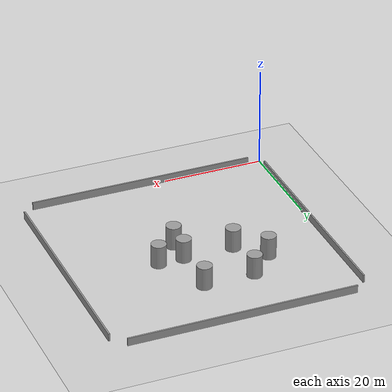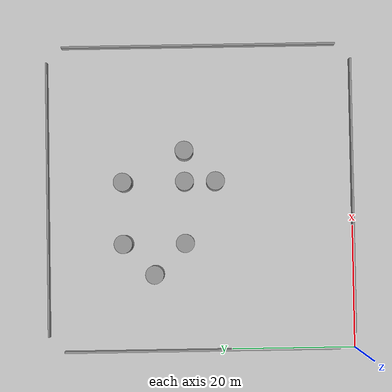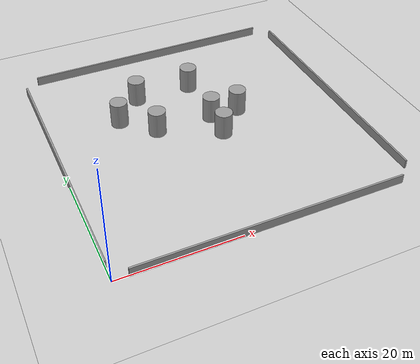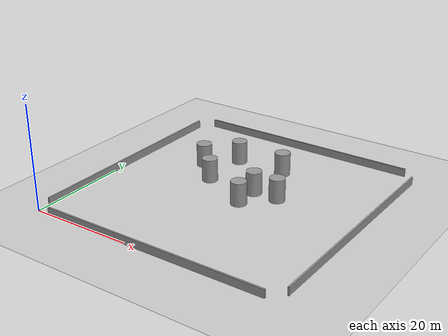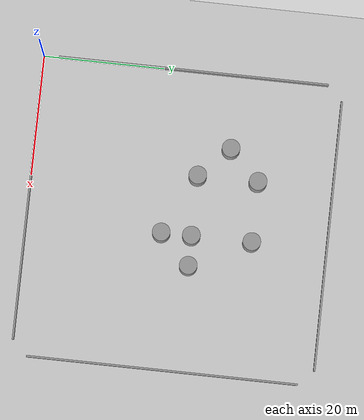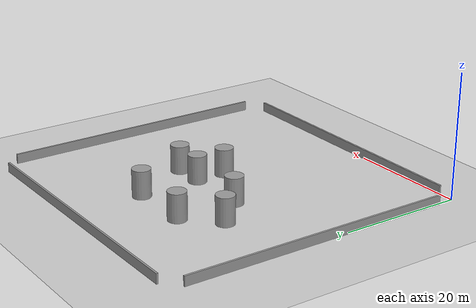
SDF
<sdf version="1.6">
 <world name="default">
  <light name="sun" type="directional">
   <pose>0 0 10 0 -0 0</pose>
   <diffuse>0.8 0.8 0.8 1</diffuse>
   <specular>0.2 0.2 0.2 1</specular>
   <attenuation>
    <range>1000</range>
    <constant>0.9</constant>
    <linear>0.01</linear>
    <quadratic>0.001</quadratic>
   </attenuation>
   <direction>-0.5 0.1 -0.9</direction>
  </light>
  <model name="ground_plane">
   <static>1</static>
   <link name="link">
    <collision name="collision">
     <geometry><plane><normal>0 0 1</normal><size>100 100</size></plane></geometry>
     <surface><friction><ode><mu>100</mu><mu2>50</mu2></ode></friction></surface>
    </collision>
    <visual name="visual">
     <cast_shadows>0</cast_shadows>
     <geometry><plane><normal>0 0 1</normal><size>100 100</size></plane></geometry>
     <material>
      <script><uri>file://media/materials/scripts/gazebo.material</uri><name>Gazebo/Grey</name></script>
     </material>
    </visual>
   </link>
  </model>
  <gravity>0 0 -9.8</gravity>
  <magnetic_field>6e-06 2.3e-05 -4.2e-05</magnetic_field>
  <atmosphere type="adiabatic"/>
  <physics name="default_physics" default="0" type="ode">
   <max_step_size>0.001</max_step_size>
   <real_time_factor>1</real_time_factor>
   <real_time_update_rate>1000</real_time_update_rate>
  </physics>
  <scene><ambient>0.4 0.4 0.4 1</ambient><background>0.7 0.7 0.7 1</background><shadows>1</shadows></scene>
  <spherical_coordinates>
   <surface_model>EARTH_WGS84</surface_model>
   <latitude_deg>0</latitude_deg>
   <longitude_deg>0</longitude_deg>
   <elevation>0</elevation>
   <heading_deg>0</heading_deg>
  </spherical_coordinates>
  <model name="border_wall">
   <link name="link">
    <inertial>
     <mass>1</mass>
     <inertia>
      <ixx>0.166667</ixx>
      <ixy>0</ixy>
      <ixz>0</ixz>
      <iyy>0.166667</iyy>
      <iyz>0</iyz>
      <izz>0.166667</izz>
     </inertia>
    </inertial>
    <visual name="ModelPreview_10::link::visual_1">
     <geometry><box><size>0.3 45 2</size></box></geometry>
     <material>
      <script><name>Gazebo/Grey</name><uri>file://media/materials/scripts/gazebo.material</uri></script>
      <ambient>0.3 0.3 0.3 1</ambient>
      <diffuse>0.7 0.7 0.7 1</diffuse>
      <specular>0.01 0.01 0.01 1</specular>
      <emissive>0 0 0 1</emissive>
      <shader type="vertex"><normal_map>__default__</normal_map></shader>
     </material>
    </visual>
    <visual name="ModelPreview_10::link::visual_2">
     <geometry><box><size>0.3 45 2</size></box></geometry>
     <material>
      <script><name>Gazebo/Grey</name><uri>file://media/materials/scripts/gazebo.material</uri></script>
      <ambient>0 0.3 0.3 1</ambient>
      <diffuse>0.7 0.7 0.7 1</diffuse>
      <specular>0.01 0.01 0.01 1</specular>
      <emissive>0 0 0 1</emissive>
      <shader type="vertex"><normal_map>__default__</normal_map></shader>
     </material>
    </visual>
    <visual name="ModelPreview_10::link::visual_3">
     <geometry><box><size>0.3 45 2</size></box></geometry>
     <material>
      <script><name>Gazebo/Grey</name><uri>file://media/materials/scripts/gazebo.material</uri></script>
      <ambient>0 0 0.3 1</ambient>
      <diffuse>0.7 0.7 0.7 1</diffuse>
      <specular>0.01 0.01 0.01 1</specular>
      <emissive>0 0 0 1</emissive>
      <shader type="vertex"><normal_map>__default__</normal_map></shader>
     </material>
    </visual>
    <visual name="ModelPreview_10::link::visual_4">
     <geometry><box><size>0.3 45 2</size></box></geometry>
     <material>
      <script><name>Gazebo/Grey</name><uri>file://media/materials/scripts/gazebo.material</uri></script>
      <ambient>0 0 0 1</ambient>
      <diffuse>0.7 0.7 0.7 1</diffuse>
      <specular>0.01 0.01 0.01 1</specular>
      <emissive>0 0 0 1</emissive>
      <shader type="vertex"><normal_map>__default__</normal_map></shader>
     </material>
    </visual>
    <visual name="ModelPreview_10::link::visual_5">
     <geometry><box><size>0.3 45 2</size></box></geometry>
     <material>
      <script><name>Gazebo/Grey</name><uri>file://media/materials/scripts/gazebo.material</uri></script>
      <ambient>0 0 0 1</ambient>
      <diffuse>0 0.7 0.7 1</diffuse>
      <specular>0.01 0.01 0.01 1</specular>
      <emissive>0 0 0 1</emissive>
      <shader type="vertex"><normal_map>__default__</normal_map></shader>
     </material>
    </visual>
    <visual name="ModelPreview_10::link::visual_6">
     <geometry><box><size>0.3 45 2</size></box></geometry>
     <material>
      <script><name>Gazebo/Grey</name><uri>file://media/materials/scripts/gazebo.material</uri></script>
      <ambient>0 0 0 1</ambient>
      <diffuse>0 0 0.7 1</diffuse>
      <specular>0.01 0.01 0.01 1</specular>
      <emissive>0 0 0 1</emissive>
      <shader type="vertex"><normal_map>__default__</normal_map></shader>
     </material>
    </visual>
    <visual name="ModelPreview_10::link::visual_7">
     <geometry><box><size>0.3 45 2</size></box></geometry>
     <material>
      <script><name>Gazebo/Grey</name><uri>file://media/materials/scripts/gazebo.material</uri></script>
      <ambient>0 0 0 1</ambient>
      <diffuse>0 0 0 1</diffuse>
      <specular>0.01 0.01 0.01 1</specular>
      <emissive>0 0 0 1</emissive>
      <shader type="vertex"><normal_map>__default__</normal_map></shader>
     </material>
    </visual>
    <visual name="ModelPreview_10::link::visual_8">
     <geometry><box><size>0.3 45 2</size></box></geometry>
     <material>
      <script><name>Gazebo/Grey</name><uri>file://media/materials/scripts/gazebo.material</uri></script>
      <ambient>0 0 0 1</ambient>
      <diffuse>0 0 0 1</diffuse>
      <specular>0 0.01 0.01 1</specular>
      <emissive>0 0 0 1</emissive>
      <shader type="vertex"><normal_map>__default__</normal_map></shader>
     </material>
    </visual>
    <visual name="ModelPreview_10::link::visual_9">
     <geometry><box><size>0.3 45 2</size></box></geometry>
     <material>
      <script><name>Gazebo/Grey</name><uri>file://media/materials/scripts/gazebo.material</uri></script>
      <ambient>0 0 0 1</ambient>
      <diffuse>0 0 0 1</diffuse>
      <specular>0 0 0.01 1</specular>
      <emissive>0 0 0 1</emissive>
      <shader type="vertex"><normal_map>__default__</normal_map></shader>
     </material>
    </visual>
    <visual name="visual">
     <geometry><box><size>0.3 45 2</size></box></geometry>
     <material>
      <script><name>Gazebo/Grey</name><uri>file://media/materials/scripts/gazebo.material</uri></script>
      <ambient>0 0 0 1</ambient>
      <diffuse>0 0 0 1</diffuse>
      <specular>0 0 0 1</specular>
      <emissive>0 0 0 1</emissive>
      <shader type="vertex"><normal_map>__default__</normal_map></shader>
     </material>
    </visual>
    <collision name="collision">
     <geometry><box><size>0.3 45 2</size></box></geometry>
     <surface>
      <friction>
       <ode><mu>1</mu><mu2>1</mu2><fdir1>0 0 0</fdir1><slip1>0</slip1><slip2>0</slip2></ode>
       <torsional>
        <coefficient>1</coefficient>
        <patch_radius>0</patch_radius>
        <surface_radius>0</surface_radius>
        <use_patch_radius>1</use_patch_radius>
        <ode><slip>0</slip></ode>
       </torsional>
      </friction>
      <bounce><restitution_coefficient>0</restitution_coefficient><threshold>1e+06</threshold></bounce>
      <contact>
       <collide_without_contact>0</collide_without_contact>
       <collide_without_contact_bitmask>1</collide_without_contact_bitmask>
       <collide_bitmask>1</collide_bitmask>
       <ode>
        <soft_cfm>0</soft_cfm>
        <soft_erp>0.2</soft_erp>
        <kp>1e+13</kp>
        <kd>1</kd>
        <max_vel>0.01</max_vel>
        <min_depth>0</min_depth>
       </ode>
       <bullet>
        <split_impulse>1</split_impulse>
        <split_impulse_penetration_threshold>-0.01</split_impulse_penetration_threshold>
        <soft_cfm>0</soft_cfm>
        <soft_erp>0.2</soft_erp>
        <kp>1e+13</kp>
        <kd>1</kd>
       </bullet>
      </contact>
     </surface>
    </collision>
   </link>
   <static>1</static>
   <pose>0 25 0.5 0 -0 0</pose>
  </model>
  <model name="border_wall_clone">
   <link name="link">
    <inertial>
     <mass>1</mass>
     <inertia>
      <ixx>0.166667</ixx>
      <ixy>0</ixy>
      <ixz>0</ixz>
      <iyy>0.166667</iyy>
      <iyz>0</iyz>
      <izz>0.166667</izz>
     </inertia>
    </inertial>
    <visual name="ModelPreview_10::link::visual_1">
     <geometry><box><size>0.3 45 2</size></box></geometry>
     <material>
      <script><name>Gazebo/Grey</name><uri>file://media/materials/scripts/gazebo.material</uri></script>
      <ambient>0.3 0.3 0.3 1</ambient>
      <diffuse>0.7 0.7 0.7 1</diffuse>
      <specular>0.01 0.01 0.01 1</specular>
      <emissive>0 0 0 1</emissive>
      <shader type="vertex"><normal_map>__default__</normal_map></shader>
     </material>
    </visual>
    <visual name="ModelPreview_10::link::visual_2">
     <geometry><box><size>0.3 45 2</size></box></geometry>
     <material>
      <script><name>Gazebo/Grey</name><uri>file://media/materials/scripts/gazebo.material</uri></script>
      <ambient>0 0.3 0.3 1</ambient>
      <diffuse>0.7 0.7 0.7 1</diffuse>
      <specular>0.01 0.01 0.01 1</specular>
      <emissive>0 0 0 1</emissive>
      <shader type="vertex"><normal_map>__default__</normal_map></shader>
     </material>
    </visual>
    <visual name="ModelPreview_10::link::visual_3">
     <geometry><box><size>0.3 45 2</size></box></geometry>
     <material>
      <script><name>Gazebo/Grey</name><uri>file://media/materials/scripts/gazebo.material</uri></script>
      <ambient>0 0 0.3 1</ambient>
      <diffuse>0.7 0.7 0.7 1</diffuse>
      <specular>0.01 0.01 0.01 1</specular>
      <emissive>0 0 0 1</emissive>
      <shader type="vertex"><normal_map>__default__</normal_map></shader>
     </material>
    </visual>
    <visual name="ModelPreview_10::link::visual_4">
     <geometry><box><size>0.3 45 2</size></box></geometry>
     <material>
      <script><name>Gazebo/Grey</name><uri>file://media/materials/scripts/gazebo.material</uri></script>
      <ambient>0 0 0 1</ambient>
      <diffuse>0.7 0.7 0.7 1</diffuse>
      <specular>0.01 0.01 0.01 1</specular>
      <emissive>0 0 0 1</emissive>
      <shader type="vertex"><normal_map>__default__</normal_map></shader>
     </material>
    </visual>
    <visual name="ModelPreview_10::link::visual_5">
     <geometry><box><size>0.3 45 2</size></box></geometry>
     <material>
      <script><name>Gazebo/Grey</name><uri>file://media/materials/scripts/gazebo.material</uri></script>
      <ambient>0 0 0 1</ambient>
      <diffuse>0 0.7 0.7 1</diffuse>
      <specular>0.01 0.01 0.01 1</specular>
      <emissive>0 0 0 1</emissive>
      <shader type="vertex"><normal_map>__default__</normal_map></shader>
     </material>
    </visual>
    <visual name="ModelPreview_10::link::visual_6">
     <geometry><box><size>0.3 45 2</size></box></geometry>
     <material>
      <script><name>Gazebo/Grey</name><uri>file://media/materials/scripts/gazebo.material</uri></script>
      <ambient>0 0 0 1</ambient>
      <diffuse>0 0 0.7 1</diffuse>
      <specular>0.01 0.01 0.01 1</specular>
      <emissive>0 0 0 1</emissive>
      <shader type="vertex"><normal_map>__default__</normal_map></shader>
     </material>
    </visual>
    <visual name="ModelPreview_10::link::visual_7">
     <geometry><box><size>0.3 45 2</size></box></geometry>
     <material>
      <script><name>Gazebo/Grey</name><uri>file://media/materials/scripts/gazebo.material</uri></script>
      <ambient>0 0 0 1</ambient>
      <diffuse>0 0 0 1</diffuse>
      <specular>0.01 0.01 0.01 1</specular>
      <emissive>0 0 0 1</emissive>
      <shader type="vertex"><normal_map>__default__</normal_map></shader>
     </material>
    </visual>
    <visual name="ModelPreview_10::link::visual_8">
     <geometry><box><size>0.3 45 2</size></box></geometry>
     <material>
      <script><name>Gazebo/Grey</name><uri>file://media/materials/scripts/gazebo.material</uri></script>
      <ambient>0 0 0 1</ambient>
      <diffuse>0 0 0 1</diffuse>
      <specular>0 0.01 0.01 1</specular>
      <emissive>0 0 0 1</emissive>
      <shader type="vertex"><normal_map>__default__</normal_map></shader>
     </material>
    </visual>
    <visual name="ModelPreview_10::link::visual_9">
     <geometry><box><size>0.3 45 2</size></box></geometry>
     <material>
      <script><name>Gazebo/Grey</name><uri>file://media/materials/scripts/gazebo.material</uri></script>
      <ambient>0 0 0 1</ambient>
      <diffuse>0 0 0 1</diffuse>
      <specular>0 0 0.01 1</specular>
      <emissive>0 0 0 1</emissive>
      <shader type="vertex"><normal_map>__default__</normal_map></shader>
     </material>
    </visual>
    <visual name="visual">
     <geometry><box><size>0.3 45 2</size></box></geometry>
     <material>
      <script><name>Gazebo/Grey</name><uri>file://media/materials/scripts/gazebo.material</uri></script>
      <ambient>0 0 0 1</ambient>
      <diffuse>0 0 0 1</diffuse>
      <specular>0 0 0 1</specular>
      <emissive>0 0 0 1</emissive>
      <shader type="vertex"><normal_map>__default__</normal_map></shader>
     </material>
    </visual>
    <collision name="collision">
     <geometry><box><size>0.3 45 2</size></box></geometry>
     <surface>
      <friction>
       <ode><mu>1</mu><mu2>1</mu2><fdir1>0 0 0</fdir1><slip1>0</slip1><slip2>0</slip2></ode>
       <torsional>
        <coefficient>1</coefficient>
        <patch_radius>0</patch_radius>
        <surface_radius>0</surface_radius>
        <use_patch_radius>1</use_patch_radius>
        <ode><slip>0</slip></ode>
       </torsional>
      </friction>
      <bounce><restitution_coefficient>0</restitution_coefficient><threshold>1e+06</threshold></bounce>
      <contact>
       <collide_without_contact>0</collide_without_contact>
       <collide_without_contact_bitmask>1</collide_without_contact_bitmask>
       <collide_bitmask>1</collide_bitmask>
       <ode>
        <soft_cfm>0</soft_cfm>
        <soft_erp>0.2</soft_erp>
        <kp>1e+13</kp>
        <kd>1</kd>
        <max_vel>0.01</max_vel>
        <min_depth>0</min_depth>
       </ode>
       <bullet>
        <split_impulse>1</split_impulse>
        <split_impulse_penetration_threshold>-0.01</split_impulse_penetration_threshold>
        <soft_cfm>0</soft_cfm>
        <soft_erp>0.2</soft_erp>
        <kp>1e+13</kp>
        <kd>1</kd>
       </bullet>
      </contact>
     </surface>
    </collision>
   </link>
   <static>1</static>
   <pose>50 25 0.5 0 -0 0</pose>
  </model>
  <model name="border_wall_clone_clone">
   <link name="link">
    <inertial>
     <mass>1</mass>
     <inertia>
      <ixx>0.166667</ixx>
      <ixy>0</ixy>
      <ixz>0</ixz>
      <iyy>0.166667</iyy>
      <iyz>0</iyz>
      <izz>0.166667</izz>
     </inertia>
    </inertial>
    <visual name="ModelPreview_10::link::visual_1">
     <geometry><box><size>0.3 45 2</size></box></geometry>
     <material>
      <script><name>Gazebo/Grey</name><uri>file://media/materials/scripts/gazebo.material</uri></script>
      <ambient>0.3 0.3 0.3 1</ambient>
      <diffuse>0.7 0.7 0.7 1</diffuse>
      <specular>0.01 0.01 0.01 1</specular>
      <emissive>0 0 0 1</emissive>
      <shader type="vertex"><normal_map>__default__</normal_map></shader>
     </material>
    </visual>
    <visual name="ModelPreview_10::link::visual_2">
     <geometry><box><size>0.3 45 2</size></box></geometry>
     <material>
      <script><name>Gazebo/Grey</name><uri>file://media/materials/scripts/gazebo.material</uri></script>
      <ambient>0 0.3 0.3 1</ambient>
      <diffuse>0.7 0.7 0.7 1</diffuse>
      <specular>0.01 0.01 0.01 1</specular>
      <emissive>0 0 0 1</emissive>
      <shader type="vertex"><normal_map>__default__</normal_map></shader>
     </material>
    </visual>
    <visual name="ModelPreview_10::link::visual_3">
     <geometry><box><size>0.3 45 2</size></box></geometry>
     <material>
      <script><name>Gazebo/Grey</name><uri>file://media/materials/scripts/gazebo.material</uri></script>
      <ambient>0 0 0.3 1</ambient>
      <diffuse>0.7 0.7 0.7 1</diffuse>
      <specular>0.01 0.01 0.01 1</specular>
      <emissive>0 0 0 1</emissive>
      <shader type="vertex"><normal_map>__default__</normal_map></shader>
     </material>
    </visual>
    <visual name="ModelPreview_10::link::visual_4">
     <geometry><box><size>0.3 45 2</size></box></geometry>
     <material>
      <script><name>Gazebo/Grey</name><uri>file://media/materials/scripts/gazebo.material</uri></script>
      <ambient>0 0 0 1</ambient>
      <diffuse>0.7 0.7 0.7 1</diffuse>
      <specular>0.01 0.01 0.01 1</specular>
      <emissive>0 0 0 1</emissive>
      <shader type="vertex"><normal_map>__default__</normal_map></shader>
     </material>
    </visual>
    <visual name="ModelPreview_10::link::visual_5">
     <geometry><box><size>0.3 45 2</size></box></geometry>
     <material>
      <script><name>Gazebo/Grey</name><uri>file://media/materials/scripts/gazebo.material</uri></script>
      <ambient>0 0 0 1</ambient>
      <diffuse>0 0.7 0.7 1</diffuse>
      <specular>0.01 0.01 0.01 1</specular>
      <emissive>0 0 0 1</emissive>
      <shader type="vertex"><normal_map>__default__</normal_map></shader>
     </material>
    </visual>
    <visual name="ModelPreview_10::link::visual_6">
     <geometry><box><size>0.3 45 2</size></box></geometry>
     <material>
      <script><name>Gazebo/Grey</name><uri>file://media/materials/scripts/gazebo.material</uri></script>
      <ambient>0 0 0 1</ambient>
      <diffuse>0 0 0.7 1</diffuse>
      <specular>0.01 0.01 0.01 1</specular>
      <emissive>0 0 0 1</emissive>
      <shader type="vertex"><normal_map>__default__</normal_map></shader>
     </material>
    </visual>
    <visual name="ModelPreview_10::link::visual_7">
     <geometry><box><size>0.3 45 2</size></box></geometry>
     <material>
      <script><name>Gazebo/Grey</name><uri>file://media/materials/scripts/gazebo.material</uri></script>
      <ambient>0 0 0 1</ambient>
      <diffuse>0 0 0 1</diffuse>
      <specular>0.01 0.01 0.01 1</specular>
      <emissive>0 0 0 1</emissive>
      <shader type="vertex"><normal_map>__default__</normal_map></shader>
     </material>
    </visual>
    <visual name="ModelPreview_10::link::visual_8">
     <geometry><box><size>0.3 45 2</size></box></geometry>
     <material>
      <script><name>Gazebo/Grey</name><uri>file://media/materials/scripts/gazebo.material</uri></script>
      <ambient>0 0 0 1</ambient>
      <diffuse>0 0 0 1</diffuse>
      <specular>0 0.01 0.01 1</specular>
      <emissive>0 0 0 1</emissive>
      <shader type="vertex"><normal_map>__default__</normal_map></shader>
     </material>
    </visual>
    <visual name="ModelPreview_10::link::visual_9">
     <geometry><box><size>0.3 45 2</size></box></geometry>
     <material>
      <script><name>Gazebo/Grey</name><uri>file://media/materials/scripts/gazebo.material</uri></script>
      <ambient>0 0 0 1</ambient>
      <diffuse>0 0 0 1</diffuse>
      <specular>0 0 0.01 1</specular>
      <emissive>0 0 0 1</emissive>
      <shader type="vertex"><normal_map>__default__</normal_map></shader>
     </material>
    </visual>
    <visual name="visual">
     <geometry><box><size>0.3 45 2</size></box></geometry>
     <material>
      <script><name>Gazebo/Grey</name><uri>file://media/materials/scripts/gazebo.material</uri></script>
      <ambient>0 0 0 1</ambient>
      <diffuse>0 0 0 1</diffuse>
      <specular>0 0 0 1</specular>
      <emissive>0 0 0 1</emissive>
      <shader type="vertex"><normal_map>__default__</normal_map></shader>
     </material>
    </visual>
    <collision name="collision">
     <geometry><box><size>0.3 45 2</size></box></geometry>
     <surface>
      <friction>
       <ode><mu>1</mu><mu2>1</mu2><fdir1>0 0 0</fdir1><slip1>0</slip1><slip2>0</slip2></ode>
       <torsional>
        <coefficient>1</coefficient>
        <patch_radius>0</patch_radius>
        <surface_radius>0</surface_radius>
        <use_patch_radius>1</use_patch_radius>
        <ode><slip>0</slip></ode>
       </torsional>
      </friction>
      <bounce><restitution_coefficient>0</restitution_coefficient><threshold>1e+06</threshold></bounce>
      <contact>
       <collide_without_contact>0</collide_without_contact>
       <collide_without_contact_bitmask>1</collide_without_contact_bitmask>
       <collide_bitmask>1</collide_bitmask>
       <ode>
        <soft_cfm>0</soft_cfm>
        <soft_erp>0.2</soft_erp>
        <kp>1e+13</kp>
        <kd>1</kd>
        <max_vel>0.01</max_vel>
        <min_depth>0</min_depth>
       </ode>
       <bullet>
        <split_impulse>1</split_impulse>
        <split_impulse_penetration_threshold>-0.01</split_impulse_penetration_threshold>
        <soft_cfm>0</soft_cfm>
        <soft_erp>0.2</soft_erp>
        <kp>1e+13</kp>
        <kd>1</kd>
       </bullet>
      </contact>
     </surface>
    </collision>
   </link>
   <static>1</static>
   <pose>25 50 0.5 0 -0 1.5708</pose>
  </model>
  <model name="border_wall_clone_clone_clone">
   <link name="link">
    <inertial>
     <mass>1</mass>
     <inertia>
      <ixx>0.166667</ixx>
      <ixy>0</ixy>
      <ixz>0</ixz>
      <iyy>0.166667</iyy>
      <iyz>0</iyz>
      <izz>0.166667</izz>
     </inertia>
    </inertial>
    <visual name="ModelPreview_10::link::visual_1">
     <geometry><box><size>0.3 45 2</size></box></geometry>
     <material>
      <script><name>Gazebo/Grey</name><uri>file://media/materials/scripts/gazebo.material</uri></script>
      <ambient>0.3 0.3 0.3 1</ambient>
      <diffuse>0.7 0.7 0.7 1</diffuse>
      <specular>0.01 0.01 0.01 1</specular>
      <emissive>0 0 0 1</emissive>
      <shader type="vertex"><normal_map>__default__</normal_map></shader>
     </material>
    </visual>
    <visual name="ModelPreview_10::link::visual_2">
     <geometry><box><size>0.3 45 2</size></box></geometry>
     <material>
      <script><name>Gazebo/Grey</name><uri>file://media/materials/scripts/gazebo.material</uri></script>
      <ambient>0 0.3 0.3 1</ambient>
      <diffuse>0.7 0.7 0.7 1</diffuse>
      <specular>0.01 0.01 0.01 1</specular>
      <emissive>0 0 0 1</emissive>
      <shader type="vertex"><normal_map>__default__</normal_map></shader>
     </material>
    </visual>
    <visual name="ModelPreview_10::link::visual_3">
     <geometry><box><size>0.3 45 2</size></box></geometry>
     <material>
      <script><name>Gazebo/Grey</name><uri>file://media/materials/scripts/gazebo.material</uri></script>
      <ambient>0 0 0.3 1</ambient>
      <diffuse>0.7 0.7 0.7 1</diffuse>
      <specular>0.01 0.01 0.01 1</specular>
      <emissive>0 0 0 1</emissive>
      <shader type="vertex"><normal_map>__default__</normal_map></shader>
     </material>
    </visual>
    <visual name="ModelPreview_10::link::visual_4">
     <geometry><box><size>0.3 45 2</size></box></geometry>
     <material>
      <script><name>Gazebo/Grey</name><uri>file://media/materials/scripts/gazebo.material</uri></script>
      <ambient>0 0 0 1</ambient>
      <diffuse>0.7 0.7 0.7 1</diffuse>
      <specular>0.01 0.01 0.01 1</specular>
      <emissive>0 0 0 1</emissive>
      <shader type="vertex"><normal_map>__default__</normal_map></shader>
     </material>
    </visual>
    <visual name="ModelPreview_10::link::visual_5">
     <geometry><box><size>0.3 45 2</size></box></geometry>
     <material>
      <script><name>Gazebo/Grey</name><uri>file://media/materials/scripts/gazebo.material</uri></script>
      <ambient>0 0 0 1</ambient>
      <diffuse>0 0.7 0.7 1</diffuse>
      <specular>0.01 0.01 0.01 1</specular>
      <emissive>0 0 0 1</emissive>
      <shader type="vertex"><normal_map>__default__</normal_map></shader>
     </material>
    </visual>
    <visual name="ModelPreview_10::link::visual_6">
     <geometry><box><size>0.3 45 2</size></box></geometry>
     <material>
      <script><name>Gazebo/Grey</name><uri>file://media/materials/scripts/gazebo.material</uri></script>
      <ambient>0 0 0 1</ambient>
      <diffuse>0 0 0.7 1</diffuse>
      <specular>0.01 0.01 0.01 1</specular>
      <emissive>0 0 0 1</emissive>
      <shader type="vertex"><normal_map>__default__</normal_map></shader>
     </material>
    </visual>
    <visual name="ModelPreview_10::link::visual_7">
     <geometry><box><size>0.3 45 2</size></box></geometry>
     <material>
      <script><name>Gazebo/Grey</name><uri>file://media/materials/scripts/gazebo.material</uri></script>
      <ambient>0 0 0 1</ambient>
      <diffuse>0 0 0 1</diffuse>
      <specular>0.01 0.01 0.01 1</specular>
      <emissive>0 0 0 1</emissive>
      <shader type="vertex"><normal_map>__default__</normal_map></shader>
     </material>
    </visual>
    <visual name="ModelPreview_10::link::visual_8">
     <geometry><box><size>0.3 45 2</size></box></geometry>
     <material>
      <script><name>Gazebo/Grey</name><uri>file://media/materials/scripts/gazebo.material</uri></script>
      <ambient>0 0 0 1</ambient>
      <diffuse>0 0 0 1</diffuse>
      <specular>0 0.01 0.01 1</specular>
      <emissive>0 0 0 1</emissive>
      <shader type="vertex"><normal_map>__default__</normal_map></shader>
     </material>
    </visual>
    <visual name="ModelPreview_10::link::visual_9">
     <geometry><box><size>0.3 45 2</size></box></geometry>
     <material>
      <script><name>Gazebo/Grey</name><uri>file://media/materials/scripts/gazebo.material</uri></script>
      <ambient>0 0 0 1</ambient>
      <diffuse>0 0 0 1</diffuse>
      <specular>0 0 0.01 1</specular>
      <emissive>0 0 0 1</emissive>
      <shader type="vertex"><normal_map>__default__</normal_map></shader>
     </material>
    </visual>
    <visual name="visual">
     <geometry><box><size>0.3 45 2</size></box></geometry>
     <material>
      <script><name>Gazebo/Grey</name><uri>file://media/materials/scripts/gazebo.material</uri></script>
      <ambient>0 0 0 1</ambient>
      <diffuse>0 0 0 1</diffuse>
      <specular>0 0 0 1</specular>
      <emissive>0 0 0 1</emissive>
      <shader type="vertex"><normal_map>__default__</normal_map></shader>
     </material>
    </visual>
    <collision name="collision">
     <geometry><box><size>0.3 45 2</size></box></geometry>
     <surface>
      <friction>
       <ode><mu>1</mu><mu2>1</mu2><fdir1>0 0 0</fdir1><slip1>0</slip1><slip2>0</slip2></ode>
       <torsional>
        <coefficient>1</coefficient>
        <patch_radius>0</patch_radius>
        <surface_radius>0</surface_radius>
        <use_patch_radius>1</use_patch_radius>
        <ode><slip>0</slip></ode>
       </torsional>
      </friction>
      <bounce><restitution_coefficient>0</restitution_coefficient><threshold>1e+06</threshold></bounce>
      <contact>
       <collide_without_contact>0</collide_without_contact>
       <collide_without_contact_bitmask>1</collide_without_contact_bitmask>
       <collide_bitmask>1</collide_bitmask>
       <ode>
        <soft_cfm>0</soft_cfm>
        <soft_erp>0.2</soft_erp>
        <kp>1e+13</kp>
        <kd>1</kd>
        <max_vel>0.01</max_vel>
        <min_depth>0</min_depth>
       </ode>
       <bullet>
        <split_impulse>1</split_impulse>
        <split_impulse_penetration_threshold>-0.01</split_impulse_penetration_threshold>
        <soft_cfm>0</soft_cfm>
        <soft_erp>0.2</soft_erp>
        <kp>1e+13</kp>
        <kd>1</kd>
       </bullet>
      </contact>
     </surface>
    </collision>
   </link>
   <static>1</static>
   <pose>25 0 0.5 0 -0 1.5708</pose>
  </model>
  <model name="cylindar_obstacle_3m">
   <link name="link">
    <inertial>
     <mass>1</mass>
     <inertia><ixx>0.145833</ixx><ixy>0</ixy><ixz>0</ixz><iyy>0.145833</iyy><iyz>0</iyz><izz>0.125</izz></inertia>
    </inertial>
    <visual name="ModelPreview_1::link::visual_1">
     <geometry><cylinder><radius>1.5</radius><length>5</length></cylinder></geometry>
     <material>
      <script><name>Gazebo/Grey</name><uri>file://media/materials/scripts/gazebo.material</uri></script>
      <ambient>0.3 0.3 0.3 1</ambient>
      <diffuse>0.7 0.7 0.7 1</diffuse>
      <specular>0.01 0.01 0.01 1</specular>
      <emissive>0 0 0 1</emissive>
      <shader type="vertex"><normal_map>__default__</normal_map></shader>
     </material>
    </visual>
    <visual name="visual">
     <geometry><cylinder><radius>1.5</radius><length>5</length></cylinder></geometry>
     <material>
      <script><name>Gazebo/Red</name><uri>file://media/materials/scripts/gazebo.material</uri></script>
      <ambient>1 0 0 1</ambient>
      <diffuse>1 0 0 1</diffuse>
      <specular>1 0 0 1</specular>
      <emissive>0 0 0 1</emissive>
      <shader type="vertex"><normal_map>__default__</normal_map></shader>
     </material>
    </visual>
    <visual name="ModelPreview_1::link::visual_2">
     <geometry><cylinder><radius>1.5</radius><length>5</length></cylinder></geometry>
     <material>
      <script><name>Gazebo/Grey</name><uri>file://media/materials/scripts/gazebo.material</uri></script>
      <ambient>0.3 0.3 0.3 1</ambient>
      <diffuse>0.7 0.7 0.7 1</diffuse>
      <specular>0.01 0.01 0.01 1</specular>
      <emissive>0 0 0 1</emissive>
      <shader type="vertex"><normal_map>__default__</normal_map></shader>
     </material>
    </visual>
    <collision name="collision">
     <geometry><cylinder><radius>1.5</radius><length>5</length></cylinder></geometry>
     <surface>
      <friction>
       <ode><mu>1</mu><mu2>1</mu2><fdir1>0 0 0</fdir1><slip1>0</slip1><slip2>0</slip2></ode>
       <torsional>
        <coefficient>1</coefficient>
        <patch_radius>0</patch_radius>
        <surface_radius>0</surface_radius>
        <use_patch_radius>1</use_patch_radius>
        <ode><slip>0</slip></ode>
       </torsional>
      </friction>
      <bounce><restitution_coefficient>0</restitution_coefficient><threshold>1e+06</threshold></bounce>
      <contact>
       <collide_without_contact>0</collide_without_contact>
       <collide_without_contact_bitmask>1</collide_without_contact_bitmask>
       <collide_bitmask>1</collide_bitmask>
       <ode>
        <soft_cfm>0</soft_cfm>
        <soft_erp>0.2</soft_erp>
        <kp>1e+13</kp>
        <kd>1</kd>
        <max_vel>0.01</max_vel>
        <min_depth>0</min_depth>
       </ode>
       <bullet>
        <split_impulse>1</split_impulse>
        <split_impulse_penetration_threshold>-0.01</split_impulse_penetration_threshold>
        <soft_cfm>0</soft_cfm>
        <soft_erp>0.2</soft_erp>
        <kp>1e+13</kp>
        <kd>1</kd>
       </bullet>
      </contact>
     </surface>
    </collision>
   </link>
   <static>1</static>
   <pose>32.5 27.5 2 0 -0 0</pose>
  </model>
  <model name="cylindar_obstacle_3m_clone">
   <link name="link">
    <inertial>
     <mass>1</mass>
     <inertia><ixx>0.145833</ixx><ixy>0</ixy><ixz>0</ixz><iyy>0.145833</iyy><iyz>0</iyz><izz>0.125</izz></inertia>
    </inertial>
    <visual name="ModelPreview_1::link::visual_1">
     <geometry><cylinder><radius>1.5</radius><length>5</length></cylinder></geometry>
     <material>
      <script><name>Gazebo/Grey</name><uri>file://media/materials/scripts/gazebo.material</uri></script>
      <ambient>0.3 0.3 0.3 1</ambient>
      <diffuse>0.7 0.7 0.7 1</diffuse>
      <specular>0.01 0.01 0.01 1</specular>
      <emissive>0 0 0 1</emissive>
      <shader type="vertex"><normal_map>__default__</normal_map></shader>
     </material>
    </visual>
    <visual name="visual">
     <geometry><cylinder><radius>1.5</radius><length>5</length></cylinder></geometry>
     <material>
      <script><name>Gazebo/Red</name><uri>file://media/materials/scripts/gazebo.material</uri></script>
      <ambient>1 0 0 1</ambient>
      <diffuse>1 0 0 1</diffuse>
      <specular>1 0 0 1</specular>
      <emissive>0 0 0 1</emissive>
      <shader type="vertex"><normal_map>__default__</normal_map></shader>
     </material>
    </visual>
    <visual name="ModelPreview_1::link::visual_2">
     <geometry><cylinder><radius>1.5</radius><length>5</length></cylinder></geometry>
     <material>
      <script><name>Gazebo/Grey</name><uri>file://media/materials/scripts/gazebo.material</uri></script>
      <ambient>0.3 0.3 0.3 1</ambient>
      <diffuse>0.7 0.7 0.7 1</diffuse>
      <specular>0.01 0.01 0.01 1</specular>
      <emissive>0 0 0 1</emissive>
      <shader type="vertex"><normal_map>__default__</normal_map></shader>
     </material>
    </visual>
    <collision name="collision">
     <geometry><cylinder><radius>1.5</radius><length>5</length></cylinder></geometry>
     <surface>
      <friction>
       <ode><mu>1</mu><mu2>1</mu2><fdir1>0 0 0</fdir1><slip1>0</slip1><slip2>0</slip2></ode>
       <torsional>
        <coefficient>1</coefficient>
        <patch_radius>0</patch_radius>
        <surface_radius>0</surface_radius>
        <use_patch_radius>1</use_patch_radius>
        <ode><slip>0</slip></ode>
       </torsional>
      </friction>
      <bounce><restitution_coefficient>0</restitution_coefficient><threshold>1e+06</threshold></bounce>
      <contact>
       <collide_without_contact>0</collide_without_contact>
       <collide_without_contact_bitmask>1</collide_without_contact_bitmask>
       <collide_bitmask>1</collide_bitmask>
       <ode>
        <soft_cfm>0</soft_cfm>
        <soft_erp>0.2</soft_erp>
        <kp>1e+13</kp>
        <kd>1</kd>
        <max_vel>0.01</max_vel>
        <min_depth>0</min_depth>
       </ode>
       <bullet>
        <split_impulse>1</split_impulse>
        <split_impulse_penetration_threshold>-0.01</split_impulse_penetration_threshold>
        <soft_cfm>0</soft_cfm>
        <soft_erp>0.2</soft_erp>
        <kp>1e+13</kp>
        <kd>1</kd>
       </bullet>
      </contact>
     </surface>
    </collision>
   </link>
   <static>1</static>
   <pose>27.5 22.5 2 0 -0 0</pose>
  </model>
  <model name="cylindar_obstacle_3m_clone_clone">
   <link name="link">
    <inertial>
     <mass>1</mass>
     <inertia><ixx>0.145833</ixx><ixy>0</ixy><ixz>0</ixz><iyy>0.145833</iyy><iyz>0</iyz><izz>0.125</izz></inertia>
    </inertial>
    <visual name="ModelPreview_1::link::visual_1">
     <geometry><cylinder><radius>1.5</radius><length>5</length></cylinder></geometry>
     <material>
      <script><name>Gazebo/Grey</name><uri>file://media/materials/scripts/gazebo.material</uri></script>
      <ambient>0.3 0.3 0.3 1</ambient>
      <diffuse>0.7 0.7 0.7 1</diffuse>
      <specular>0.01 0.01 0.01 1</specular>
      <emissive>0 0 0 1</emissive>
      <shader type="vertex"><normal_map>__default__</normal_map></shader>
     </material>
    </visual>
    <visual name="visual">
     <geometry><cylinder><radius>1.5</radius><length>5</length></cylinder></geometry>
     <material>
      <script><name>Gazebo/Red</name><uri>file://media/materials/scripts/gazebo.material</uri></script>
      <ambient>1 0 0 1</ambient>
      <diffuse>1 0 0 1</diffuse>
      <specular>1 0 0 1</specular>
      <emissive>0 0 0 1</emissive>
      <shader type="vertex"><normal_map>__default__</normal_map></shader>
     </material>
    </visual>
    <visual name="ModelPreview_1::link::visual_2">
     <geometry><cylinder><radius>1.5</radius><length>5</length></cylinder></geometry>
     <material>
      <script><name>Gazebo/Grey</name><uri>file://media/materials/scripts/gazebo.material</uri></script>
      <ambient>0.3 0.3 0.3 1</ambient>
      <diffuse>0.7 0.7 0.7 1</diffuse>
      <specular>0.01 0.01 0.01 1</specular>
      <emissive>0 0 0 1</emissive>
      <shader type="vertex"><normal_map>__default__</normal_map></shader>
     </material>
    </visual>
    <collision name="collision">
     <geometry><cylinder><radius>1.5</radius><length>5</length></cylinder></geometry>
     <surface>
      <friction>
       <ode><mu>1</mu><mu2>1</mu2><fdir1>0 0 0</fdir1><slip1>0</slip1><slip2>0</slip2></ode>
       <torsional>
        <coefficient>1</coefficient>
        <patch_radius>0</patch_radius>
        <surface_radius>0</surface_radius>
        <use_patch_radius>1</use_patch_radius>
        <ode><slip>0</slip></ode>
       </torsional>
      </friction>
      <bounce><restitution_coefficient>0</restitution_coefficient><threshold>1e+06</threshold></bounce>
      <contact>
       <collide_without_contact>0</collide_without_contact>
       <collide_without_contact_bitmask>1</collide_without_contact_bitmask>
       <collide_bitmask>1</collide_bitmask>
       <ode>
        <soft_cfm>0</soft_cfm>
        <soft_erp>0.2</soft_erp>
        <kp>1e+13</kp>
        <kd>1</kd>
        <max_vel>0.01</max_vel>
        <min_depth>0</min_depth>
       </ode>
       <bullet>
        <split_impulse>1</split_impulse>
        <split_impulse_penetration_threshold>-0.01</split_impulse_penetration_threshold>
        <soft_cfm>0</soft_cfm>
        <soft_erp>0.2</soft_erp>
        <kp>1e+13</kp>
        <kd>1</kd>
       </bullet>
      </contact>
     </surface>
    </collision>
   </link>
   <static>1</static>
   <pose>12.5 32.5 2 0 -0 0</pose>
  </model>
  <model name="cylindar_obstacle_3m_clone_clone_clone">
   <link name="link">
    <inertial>
     <mass>1</mass>
     <inertia><ixx>0.145833</ixx><ixy>0</ixy><ixz>0</ixz><iyy>0.145833</iyy><iyz>0</iyz><izz>0.125</izz></inertia>
    </inertial>
    <visual name="ModelPreview_1::link::visual_1">
     <geometry><cylinder><radius>1.5</radius><length>5</length></cylinder></geometry>
     <material>
      <script><name>Gazebo/Grey</name><uri>file://media/materials/scripts/gazebo.material</uri></script>
      <ambient>0.3 0.3 0.3 1</ambient>
      <diffuse>0.7 0.7 0.7 1</diffuse>
      <specular>0.01 0.01 0.01 1</specular>
      <emissive>0 0 0 1</emissive>
      <shader type="vertex"><normal_map>__default__</normal_map></shader>
     </material>
    </visual>
    <visual name="visual">
     <geometry><cylinder><radius>1.5</radius><length>5</length></cylinder></geometry>
     <material>
      <script><name>Gazebo/Red</name><uri>file://media/materials/scripts/gazebo.material</uri></script>
      <ambient>1 0 0 1</ambient>
      <diffuse>1 0 0 1</diffuse>
      <specular>1 0 0 1</specular>
      <emissive>0 0 0 1</emissive>
      <shader type="vertex"><normal_map>__default__</normal_map></shader>
     </material>
    </visual>
    <visual name="ModelPreview_1::link::visual_2">
     <geometry><cylinder><radius>1.5</radius><length>5</length></cylinder></geometry>
     <material>
      <script><name>Gazebo/Grey</name><uri>file://media/materials/scripts/gazebo.material</uri></script>
      <ambient>0.3 0.3 0.3 1</ambient>
      <diffuse>0.7 0.7 0.7 1</diffuse>
      <specular>0.01 0.01 0.01 1</specular>
      <emissive>0 0 0 1</emissive>
      <shader type="vertex"><normal_map>__default__</normal_map></shader>
     </material>
    </visual>
    <collision name="collision">
     <geometry><cylinder><radius>1.5</radius><length>5</length></cylinder></geometry>
     <surface>
      <friction>
       <ode><mu>1</mu><mu2>1</mu2><fdir1>0 0 0</fdir1><slip1>0</slip1><slip2>0</slip2></ode>
       <torsional>
        <coefficient>1</coefficient>
        <patch_radius>0</patch_radius>
        <surface_radius>0</surface_radius>
        <use_patch_radius>1</use_patch_radius>
        <ode><slip>0</slip></ode>
       </torsional>
      </friction>
      <bounce><restitution_coefficient>0</restitution_coefficient><threshold>1e+06</threshold></bounce>
      <contact>
       <collide_without_contact>0</collide_without_contact>
       <collide_without_contact_bitmask>1</collide_without_contact_bitmask>
       <collide_bitmask>1</collide_bitmask>
       <ode>
        <soft_cfm>0</soft_cfm>
        <soft_erp>0.2</soft_erp>
        <kp>1e+13</kp>
        <kd>1</kd>
        <max_vel>0.01</max_vel>
        <min_depth>0</min_depth>
       </ode>
       <bullet>
        <split_impulse>1</split_impulse>
        <split_impulse_penetration_threshold>-0.01</split_impulse_penetration_threshold>
        <soft_cfm>0</soft_cfm>
        <soft_erp>0.2</soft_erp>
        <kp>1e+13</kp>
        <kd>1</kd>
       </bullet>
      </contact>
     </surface>
    </collision>
   </link>
   <static>1</static>
   <pose>17.5 37.5 2 0 -0 0</pose>
  </model>
  <model name="cylindar_obstacle_3m_clone_clone_clone_clone">
   <link name="link">
    <inertial>
     <mass>1</mass>
     <inertia><ixx>0.145833</ixx><ixy>0</ixy><ixz>0</ixz><iyy>0.145833</iyy><iyz>0</iyz><izz>0.125</izz></inertia>
    </inertial>
    <visual name="ModelPreview_1::link::visual_1">
     <geometry><cylinder><radius>1.5</radius><length>5</length></cylinder></geometry>
     <material>
      <script><name>Gazebo/Grey</name><uri>file://media/materials/scripts/gazebo.material</uri></script>
      <ambient>0.3 0.3 0.3 1</ambient>
      <diffuse>0.7 0.7 0.7 1</diffuse>
      <specular>0.01 0.01 0.01 1</specular>
      <emissive>0 0 0 1</emissive>
      <shader type="vertex"><normal_map>__default__</normal_map></shader>
     </material>
    </visual>
    <visual name="visual">
     <geometry><cylinder><radius>1.5</radius><length>5</length></cylinder></geometry>
     <material>
      <script><name>Gazebo/Red</name><uri>file://media/materials/scripts/gazebo.material</uri></script>
      <ambient>1 0 0 1</ambient>
      <diffuse>1 0 0 1</diffuse>
      <specular>1 0 0 1</specular>
      <emissive>0 0 0 1</emissive>
      <shader type="vertex"><normal_map>__default__</normal_map></shader>
     </material>
    </visual>
    <visual name="ModelPreview_1::link::visual_2">
     <geometry><cylinder><radius>1.5</radius><length>5</length></cylinder></geometry>
     <material>
      <script><name>Gazebo/Grey</name><uri>file://media/materials/scripts/gazebo.material</uri></script>
      <ambient>0.3 0.3 0.3 1</ambient>
      <diffuse>0.7 0.7 0.7 1</diffuse>
      <specular>0.01 0.01 0.01 1</specular>
      <emissive>0 0 0 1</emissive>
      <shader type="vertex"><normal_map>__default__</normal_map></shader>
     </material>
    </visual>
    <collision name="collision">
     <geometry><cylinder><radius>1.5</radius><length>5</length></cylinder></geometry>
     <surface>
      <friction>
       <ode><mu>1</mu><mu2>1</mu2><fdir1>0 0 0</fdir1><slip1>0</slip1><slip2>0</slip2></ode>
       <torsional>
        <coefficient>1</coefficient>
        <patch_radius>0</patch_radius>
        <surface_radius>0</surface_radius>
        <use_patch_radius>1</use_patch_radius>
        <ode><slip>0</slip></ode>
       </torsional>
      </friction>
      <bounce><restitution_coefficient>0</restitution_coefficient><threshold>1e+06</threshold></bounce>
      <contact>
       <collide_without_contact>0</collide_without_contact>
       <collide_without_contact_bitmask>1</collide_without_contact_bitmask>
       <collide_bitmask>1</collide_bitmask>
       <ode>
        <soft_cfm>0</soft_cfm>
        <soft_erp>0.2</soft_erp>
        <kp>1e+13</kp>
        <kd>1</kd>
        <max_vel>0.01</max_vel>
        <min_depth>0</min_depth>
       </ode>
       <bullet>
        <split_impulse>1</split_impulse>
        <split_impulse_penetration_threshold>-0.01</split_impulse_penetration_threshold>
        <soft_cfm>0</soft_cfm>
        <soft_erp>0.2</soft_erp>
        <kp>1e+13</kp>
        <kd>1</kd>
       </bullet>
      </contact>
     </surface>
    </collision>
   </link>
   <static>1</static>
   <pose>27.5 37.5 2 0 -0 0</pose>
  </model>
  <model name="cylindar_obstacle_3m_clone_clone_clone_0">
   <link name="link">
    <inertial>
     <mass>1</mass>
     <inertia><ixx>0.145833</ixx><ixy>0</ixy><ixz>0</ixz><iyy>0.145833</iyy><iyz>0</iyz><izz>0.125</izz></inertia>
    </inertial>
    <visual name="ModelPreview_1::link::visual_1">
     <geometry><cylinder><radius>1.5</radius><length>5</length></cylinder></geometry>
     <material>
      <script><name>Gazebo/Grey</name><uri>file://media/materials/scripts/gazebo.material</uri></script>
      <ambient>0.3 0.3 0.3 1</ambient>
      <diffuse>0.7 0.7 0.7 1</diffuse>
      <specular>0.01 0.01 0.01 1</specular>
      <emissive>0 0 0 1</emissive>
      <shader type="vertex"><normal_map>__default__</normal_map></shader>
     </material>
    </visual>
    <visual name="visual">
     <geometry><cylinder><radius>1.5</radius><length>5</length></cylinder></geometry>
     <material>
      <script><name>Gazebo/Red</name><uri>file://media/materials/scripts/gazebo.material</uri></script>
      <ambient>1 0 0 1</ambient>
      <diffuse>1 0 0 1</diffuse>
      <specular>1 0 0 1</specular>
      <emissive>0 0 0 1</emissive>
      <shader type="vertex"><normal_map>__default__</normal_map></shader>
     </material>
    </visual>
    <visual name="ModelPreview_1::link::visual_2">
     <geometry><cylinder><radius>1.5</radius><length>5</length></cylinder></geometry>
     <material>
      <script><name>Gazebo/Grey</name><uri>file://media/materials/scripts/gazebo.material</uri></script>
      <ambient>0.3 0.3 0.3 1</ambient>
      <diffuse>0.7 0.7 0.7 1</diffuse>
      <specular>0.01 0.01 0.01 1</specular>
      <emissive>0 0 0 1</emissive>
      <shader type="vertex"><normal_map>__default__</normal_map></shader>
     </material>
    </visual>
    <collision name="collision">
     <geometry><cylinder><radius>1.5</radius><length>5</length></cylinder></geometry>
     <surface>
      <friction>
       <ode><mu>1</mu><mu2>1</mu2><fdir1>0 0 0</fdir1><slip1>0</slip1><slip2>0</slip2></ode>
       <torsional>
        <coefficient>1</coefficient>
        <patch_radius>0</patch_radius>
        <surface_radius>0</surface_radius>
        <use_patch_radius>1</use_patch_radius>
        <ode><slip>0</slip></ode>
       </torsional>
      </friction>
      <bounce><restitution_coefficient>0</restitution_coefficient><threshold>1e+06</threshold></bounce>
      <contact>
       <collide_without_contact>0</collide_without_contact>
       <collide_without_contact_bitmask>1</collide_without_contact_bitmask>
       <collide_bitmask>1</collide_bitmask>
       <ode>
        <soft_cfm>0</soft_cfm>
        <soft_erp>0.2</soft_erp>
        <kp>1e+13</kp>
        <kd>1</kd>
        <max_vel>0.01</max_vel>
        <min_depth>0</min_depth>
       </ode>
       <bullet>
        <split_impulse>1</split_impulse>
        <split_impulse_penetration_threshold>-0.01</split_impulse_penetration_threshold>
        <soft_cfm>0</soft_cfm>
        <soft_erp>0.2</soft_erp>
        <kp>1e+13</kp>
        <kd>1</kd>
       </bullet>
      </contact>
     </surface>
    </collision>
   </link>
   <static>1</static>
   <pose>17.5 27.5 2 0 -0 0</pose>
  </model>
  <model name="cylindar_obstacle_3m_clone_0">
   <link name="link">
    <inertial>
     <mass>1</mass>
     <inertia><ixx>0.145833</ixx><ixy>0</ixy><ixz>0</ixz><iyy>0.145833</iyy><iyz>0</iyz><izz>0.125</izz></inertia>
    </inertial>
    <visual name="ModelPreview_1::link::visual_1">
     <geometry><cylinder><radius>1.5</radius><length>5</length></cylinder></geometry>
     <material>
      <script><name>Gazebo/Grey</name><uri>file://media/materials/scripts/gazebo.material</uri></script>
      <ambient>0.3 0.3 0.3 1</ambient>
      <diffuse>0.7 0.7 0.7 1</diffuse>
      <specular>0.01 0.01 0.01 1</specular>
      <emissive>0 0 0 1</emissive>
      <shader type="vertex"><normal_map>__default__</normal_map></shader>
     </material>
    </visual>
    <visual name="visual">
     <geometry><cylinder><radius>1.5</radius><length>5</length></cylinder></geometry>
     <material>
      <script><name>Gazebo/Red</name><uri>file://media/materials/scripts/gazebo.material</uri></script>
      <ambient>1 0 0 1</ambient>
      <diffuse>1 0 0 1</diffuse>
      <specular>1 0 0 1</specular>
      <emissive>0 0 0 1</emissive>
      <shader type="vertex"><normal_map>__default__</normal_map></shader>
     </material>
    </visual>
    <visual name="ModelPreview_1::link::visual_2">
     <geometry><cylinder><radius>1.5</radius><length>5</length></cylinder></geometry>
     <material>
      <script><name>Gazebo/Grey</name><uri>file://media/materials/scripts/gazebo.material</uri></script>
      <ambient>0.3 0.3 0.3 1</ambient>
      <diffuse>0.7 0.7 0.7 1</diffuse>
      <specular>0.01 0.01 0.01 1</specular>
      <emissive>0 0 0 1</emissive>
      <shader type="vertex"><normal_map>__default__</normal_map></shader>
     </material>
    </visual>
    <collision name="collision">
     <geometry><cylinder><radius>1.5</radius><length>5</length></cylinder></geometry>
     <surface>
      <friction>
       <ode><mu>1</mu><mu2>1</mu2><fdir1>0 0 0</fdir1><slip1>0</slip1><slip2>0</slip2></ode>
       <torsional>
        <coefficient>1</coefficient>
        <patch_radius>0</patch_radius>
        <surface_radius>0</surface_radius>
        <use_patch_radius>1</use_patch_radius>
        <ode><slip>0</slip></ode>
       </torsional>
      </friction>
      <bounce><restitution_coefficient>0</restitution_coefficient><threshold>1e+06</threshold></bounce>
      <contact>
       <collide_without_contact>0</collide_without_contact>
       <collide_without_contact_bitmask>1</collide_without_contact_bitmask>
       <collide_bitmask>1</collide_bitmask>
       <ode>
        <soft_cfm>0</soft_cfm>
        <soft_erp>0.2</soft_erp>
        <kp>1e+13</kp>
        <kd>1</kd>
        <max_vel>0.01</max_vel>
        <min_depth>0</min_depth>
       </ode>
       <bullet>
        <split_impulse>1</split_impulse>
        <split_impulse_penetration_threshold>-0.01</split_impulse_penetration_threshold>
        <soft_cfm>0</soft_cfm>
        <soft_erp>0.2</soft_erp>
        <kp>1e+13</kp>
        <kd>1</kd>
       </bullet>
      </contact>
     </surface>
    </collision>
   </link>
   <static>1</static>
   <pose>27.5 27.5 2 0 -0 0</pose>
  </model>
 </world>
</sdf>
